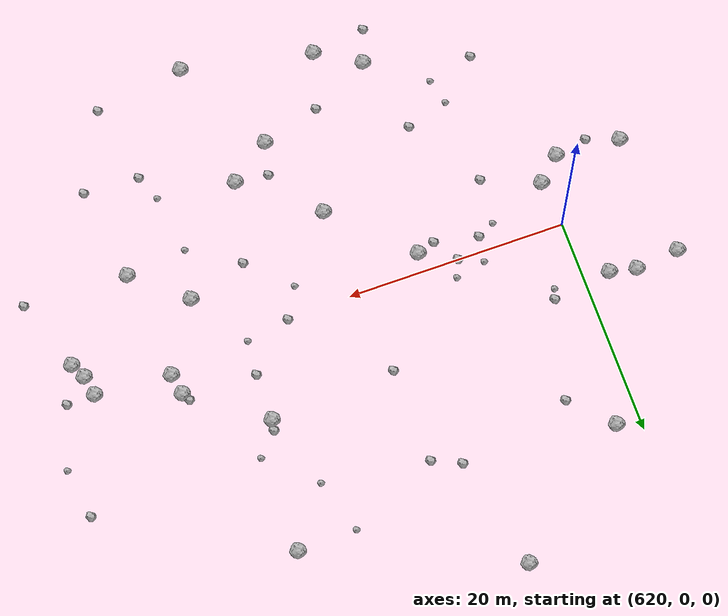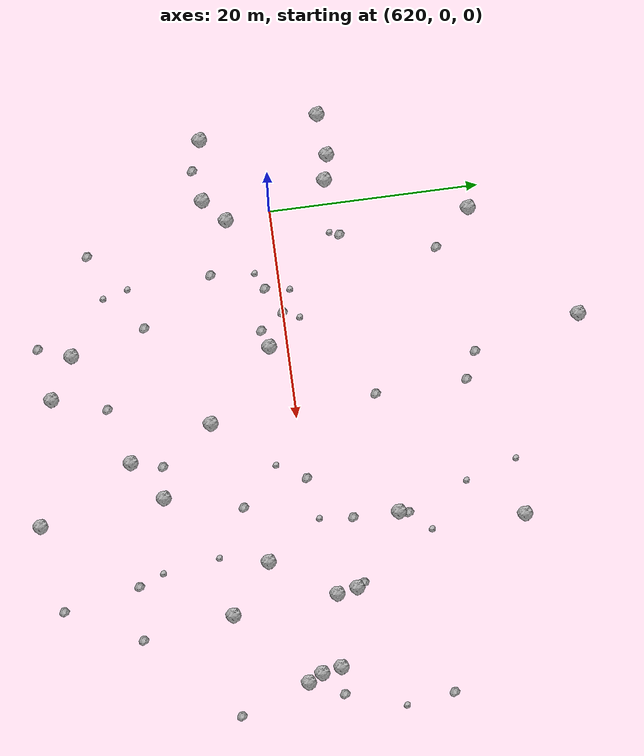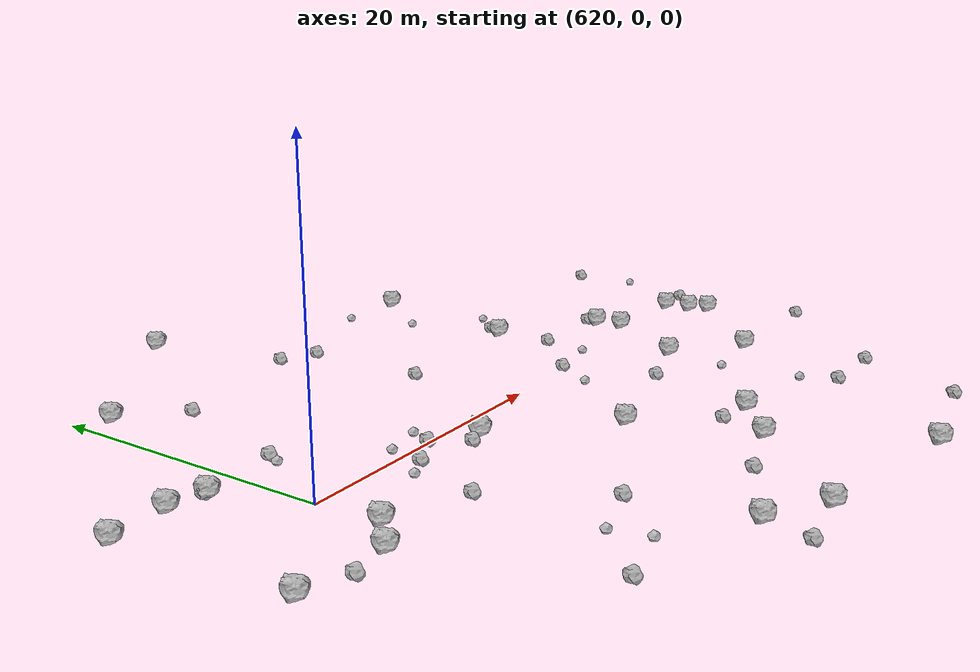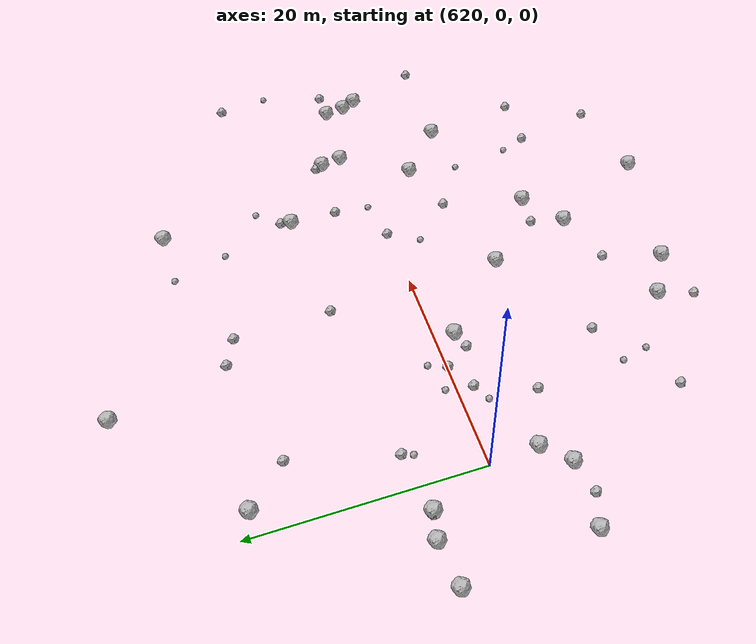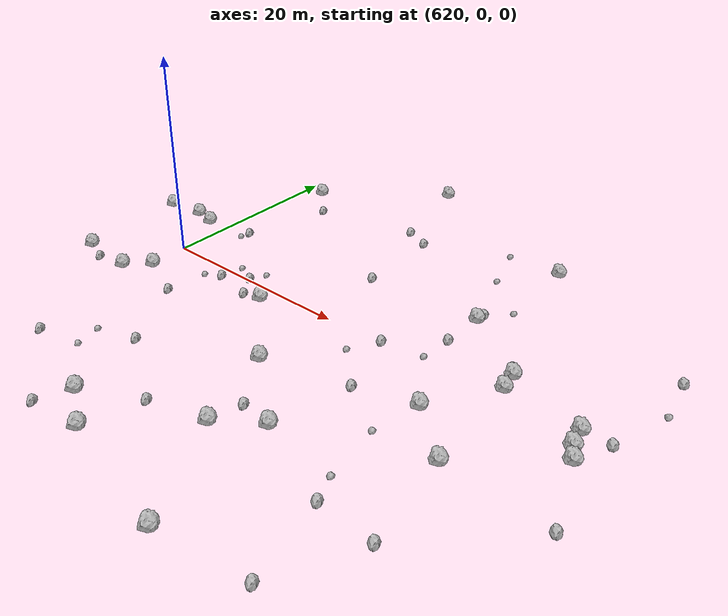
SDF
<sdf version="1.6">
 <world name="default">
  <include><uri>model://sun</uri></include>
  <model name="rock1_16_3">
   <include><uri>model://rock1</uri><pose>618.2301842121601 -6.274608419706709 0.5 0 0 0</pose></include>
  </model>
  <model name="rock1_16_4">
   <include><uri>model://rock1</uri><pose>647.211153543257 -25.310744116106363 0.5 0 0 0</pose></include>
  </model>
  <model name="rock1_16_5">
   <include><uri>model://rock1</uri><pose>653.272537708832 -4.381465256844535 0.5 0 0 0</pose></include>
  </model>
  <model name="rock1_16_6">
   <include><uri>model://rock1</uri><pose>631.484333170528 -20.465771141156555 0.5 0 0 0</pose></include>
  </model>
  <model name="rock1_16_7">
   <include><uri>model://rock1</uri><pose>633.6344521668804 27.82919027965916 0.5 0 0 0</pose></include>
  </model>
  <model name="rock1_16_8">
   <include><uri>model://rock1</uri><pose>639.5847785231873 -8.151909737242452 0.5 0 0 0</pose></include>
  </model>
  <model name="rock1_16_9">
   <include><uri>model://rock1</uri><pose>646.0459836253781 -13.43777772623072 0.5 0 0 0</pose></include>
  </model>
  <model name="rock1_16_10">
   <include><uri>model://rock1</uri><pose>657.8629494723855 -8.320919550809933 0.5 0 0 0</pose></include>
  </model>
  <model name="rock1_16_11">
   <include><uri>model://rock1</uri><pose>622.1537874531045 18.81469783910906 0.5 0 0 0</pose></include>
  </model>
  <model name="rock1_16_12">
   <include><uri>model://rock1</uri><pose>611.318448971889 5.696734443336219 0.5 0 0 0</pose></include>
  </model>
  <model name="rock1_16_13">
   <include><uri>model://rock1</uri><pose>635.3841359166055 -22.84952038254264 0.5 0 0 0</pose></include>
  </model>
  <model name="rock1_16_14">
   <include><uri>model://rock1</uri><pose>620.402470009077 -4.248228847498709 0.5 0 0 0</pose></include>
  </model>
  <model name="rock1_16_15">
   <include><uri>model://rock1</uri><pose>657.1046491063007 1.6442364410756163 0.5 0 0 0</pose></include>
  </model>
  <model name="rock1_16_16">
   <include><uri>model://rock1</uri><pose>642.3160324792904 -16.13408394416339 0.5 0 0 0</pose></include>
  </model>
  <model name="rock1_16_17">
   <include><uri>model://rock1</uri><pose>651.8963053184639 20.21359497463586 0.5 0 0 0</pose></include>
  </model>
  <model name="rock1_16_18">
   <include><uri>model://rock1</uri><pose>664.3198686539733 -0.7361148567181814 0.5 0 0 0</pose></include>
  </model>
  <model name="rock1_16_19">
   <include><uri>model://rock1</uri><pose>617.717541771184 5.567258126602937 0.5 0 0 0</pose></include>
  </model>
  <model name="rock1_16_20">
   <include><uri>model://rock1</uri><pose>612.3606889795951 -5.775409976684763 0.5 0 0 0</pose></include>
  </model>
  <model name="rock1_16_21">
   <include><uri>model://rock1</uri><pose>615.3179346837677 6.1002415603935845 0.5 0 0 0</pose></include>
  </model>
  <model name="rock1_16_22">
   <include><uri>model://rock1</uri><pose>656.7576675958853 3.580823114298937 0.5 0 0 0</pose></include>
  </model>
  <model name="rock1_16_23">
   <include><uri>model://rock1</uri><pose>650.164030866694 8.41686257459272 0.5 0 0 0</pose></include>
  </model>
  <model name="rock1_16_24">
   <include><uri>model://rock1</uri><pose>665.0229198641159 -2.0981215202851757 0.5 0 0 0</pose></include>
  </model>
  <model name="rock1_16_25">
   <include><uri>model://rock1</uri><pose>632.9990431853954 -1.7062073114002132 0.5 0 0 0</pose></include>
  </model>
  <model name="rock1_16_26">
   <include><uri>model://rock1</uri><pose>663.9784804606599 1.1175840404099162 0.5 0 0 0</pose></include>
  </model>
  <model name="rock2_16_0">
   <include><uri>model://rock2</uri><pose>656.3373921831313 4.291186374429898 0.3 0 0 0</pose></include>
  </model>
  <model name="rock2_16_1">
   <include><uri>model://rock2</uri><pose>667.3164636435947 -8.69959183523411 0.3 0 0 0</pose></include>
  </model>
  <model name="rock2_16_2">
   <include><uri>model://rock2</uri><pose>650.3063942222868 9.363498643841282 0.3 0 0 0</pose></include>
  </model>
  <model name="rock2_16_3">
   <include><uri>model://rock2</uri><pose>623.0977295844281 6.33788634142465 0.3 0 0 0</pose></include>
  </model>
  <model name="rock2_16_4">
   <include><uri>model://rock2</uri><pose>645.8462840362641 0.22836979413073877 0.3 0 0 0</pose></include>
  </model>
  <model name="rock2_16_5">
   <include><uri>model://rock2</uri><pose>617.4112269972921 5.651154496881176 0.3 0 0 0</pose></include>
  </model>
  <model name="rock2_16_6">
   <include><uri>model://rock2</uri><pose>629.8352058172464 -0.012399268584566414 0.3 0 0 0</pose></include>
  </model>
  <model name="rock2_16_7">
   <include><uri>model://rock2</uri><pose>636.9462689536743 -17.68007496056495 0.3 0 0 0</pose></include>
  </model>
  <model name="rock2_16_8">
   <include><uri>model://rock2</uri><pose>625.4965826322904 15.310414239869736 0.3 0 0 0</pose></include>
  </model>
  <model name="rock2_16_9">
   <include><uri>model://rock2</uri><pose>627.3571691315422 -1.3867938807735811 0.3 0 0 0</pose></include>
  </model>
  <model name="rock2_16_10">
   <include><uri>model://rock2</uri><pose>666.5120489071043 1.144012688295934 0.3 0 0 0</pose></include>
  </model>
  <model name="rock2_16_11">
   <include><uri>model://rock2</uri><pose>667.6495333672518 11.381166875694419 0.3 0 0 0</pose></include>
  </model>
  <model name="rock2_16_12">
   <include><uri>model://rock2</uri><pose>638.4346897563566 16.482189191472578 0.3 0 0 0</pose></include>
  </model>
  <model name="rock2_16_13">
   <include><uri>model://rock2</uri><pose>630.3739958801135 -23.541349186911777 0.3 0 0 0</pose></include>
  </model>
  <model name="rock2_16_14">
   <include><uri>model://rock2</uri><pose>638.7051004731668 7.74764179272929 0.3 0 0 0</pose></include>
  </model>
  <model name="rock2_16_15">
   <include><uri>model://rock2</uri><pose>650.0982039287758 4.092817174323557 0.3 0 0 0</pose></include>
  </model>
  <model name="rock2_16_16">
   <include><uri>model://rock2</uri><pose>635.8990166629142 17.639146493357295 0.3 0 0 0</pose></include>
  </model>
  <model name="rock2_16_17">
   <include><uri>model://rock2</uri><pose>655.4570471494602 -24.046668513332307 0.3 0 0 0</pose></include>
  </model>
  <model name="rock2_16_18">
   <include><uri>model://rock2</uri><pose>625.4163838226344 -6.3686490139184855 0.3 0 0 0</pose></include>
  </model>
  <model name="rock2_16_19">
   <include><uri>model://rock2</uri><pose>647.8543051119045 -6.042268926426516 0.3 0 0 0</pose></include>
  </model>
  <model name="rock2_16_20">
   <include><uri>model://rock2</uri><pose>654.0133423743597 -16.73442215551055 0.3 0 0 0</pose></include>
  </model>
  <model name="rock2_16_21">
   <include><uri>model://rock2</uri><pose>643.0287069190932 -13.13048611962596 0.3 0 0 0</pose></include>
  </model>
  <model name="rock2_16_22">
   <include><uri>model://rock2</uri><pose>615.1971610882526 -6.828211026785613 0.3 0 0 0</pose></include>
  </model>
  <model name="rock2_16_23">
   <include><uri>model://rock2</uri><pose>622.1248518917671 -17.81282936262027 0.3 0 0 0</pose></include>
  </model>
  <model name="rock2_16_24">
   <include><uri>model://rock2</uri><pose>659.0815582262414 -16.96621840346138 0.3 0 0 0</pose></include>
  </model>
  <model name="rock2_16_25">
   <include><uri>model://rock2</uri><pose>629.6600393241181 -13.255957657718266 0.3 0 0 0</pose></include>
  </model>
  <model name="rock2_16_26">
   <include><uri>model://rock2</uri><pose>631.3369420933973 -2.232372883826997 0.3 0 0 0</pose></include>
  </model>
  <model name="rock3_16_0">
   <include><uri>model://rock3</uri><pose>630.4953245195474 1.522606535968663 0.2 0 0 0</pose></include>
  </model>
  <model name="rock3_16_1">
   <include><uri>model://rock3</uri><pose>648.0024340690265 15.13880115513853 0.2 0 0 0</pose></include>
  </model>
  <model name="rock3_16_2">
   <include><uri>model://rock3</uri><pose>646.5075493099428 20.067405158395303 0.2 0 0 0</pose></include>
  </model>
  <model name="rock3_16_3">
   <include><uri>model://rock3</uri><pose>668.2841668556752 6.76836572088002 0.2 0 0 0</pose></include>
  </model>
  <model name="rock3_16_4">
   <include><uri>model://rock3</uri><pose>652.295189827232 -8.96550985389975 0.2 0 0 0</pose></include>
  </model>
  <model name="rock3_16_5">
   <include><uri>model://rock3</uri><pose>622.7640238296595 5.371453400395886 0.2 0 0 0</pose></include>
  </model>
  <model name="rock3_16_6">
   <include><uri>model://rock3</uri><pose>649.7884841148532 0.8782041130331599 0.2 0 0 0</pose></include>
  </model>
  <model name="rock3_16_7">
   <include><uri>model://rock3</uri><pose>625.7662025970184 -2.2032058870222606 0.2 0 0 0</pose></include>
  </model>
  <model name="rock3_16_8">
   <include><uri>model://rock3</uri><pose>626.3386181142891 -16.82454343205874 0.2 0 0 0</pose></include>
  </model>
  <model name="rock3_16_9">
   <include><uri>model://rock3</uri><pose>652.1495404088043 11.313878843717667 0.2 0 0 0</pose></include>
  </model>
  <model name="rock3_16_10">
   <include><uri>model://rock3</uri><pose>625.7470208458108 -14.42193183110666 0.2 0 0 0</pose></include>
  </model>
  <model name="rock3_16_11">
   <include><uri>model://rock3</uri><pose>627.7092435579594 0.9283032816474197 0.2 0 0 0</pose></include>
  </model>
  <model name="rock3_16_12">
   <include><uri>model://rock3</uri><pose>644.2359868575165 -2.5379332574919324 0.2 0 0 0</pose></include>
  </model>
  <model name="rock3_16_13">
   <include><uri>model://rock3</uri><pose>653.0572851217065 -14.395468454500058 0.2 0 0 0</pose></include>
  </model>
 </world>
</sdf>
